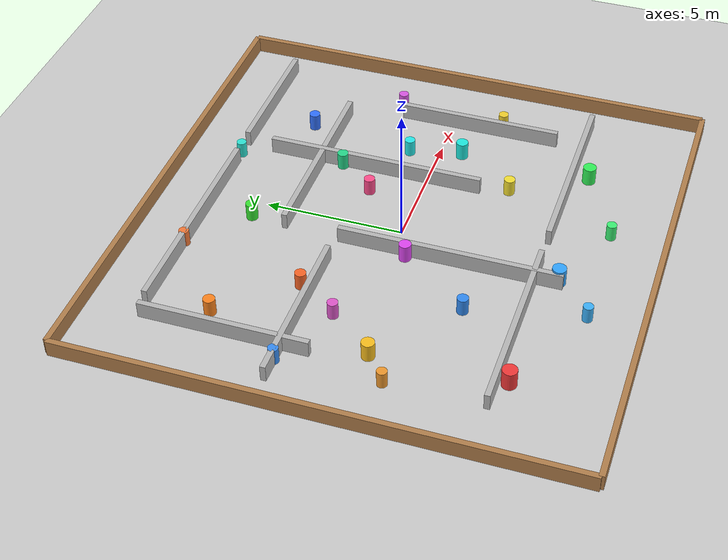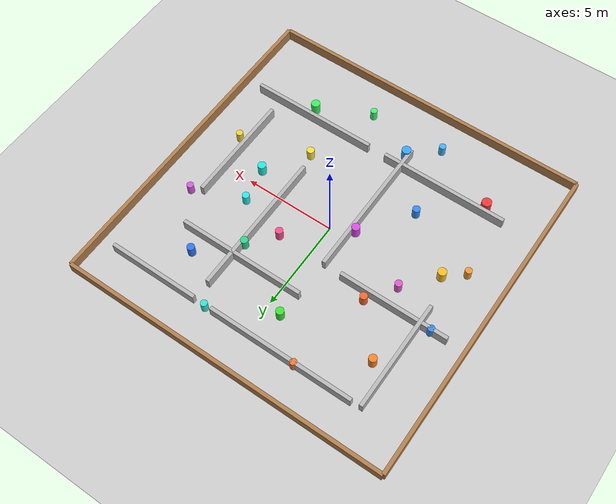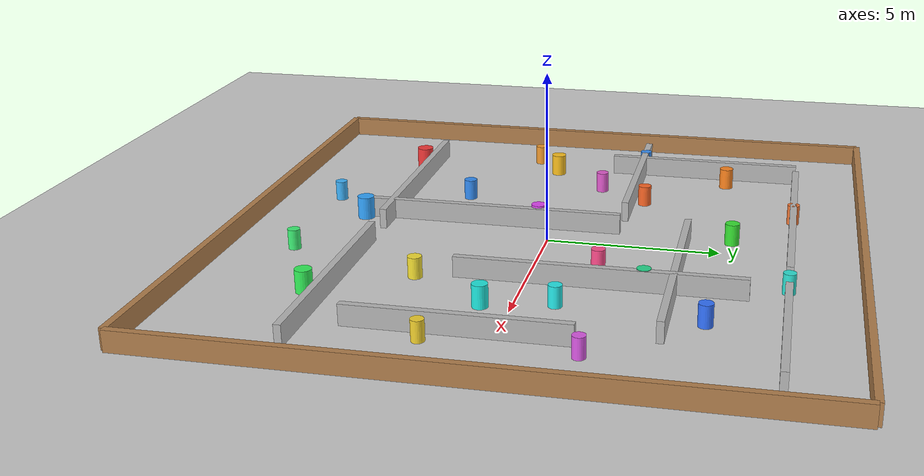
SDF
<sdf version="1.6">
 <world name="goal_seeker_large_dynamic">
  <include><uri>model://ground_plane</uri></include>
  <include><uri>model://sun</uri></include>
  <scene><shadows>false</shadows><ambient>0.45 0.45 0.45 1.0</ambient></scene>
  <physics type="ode">
   <real_time_update_rate>1000.0</real_time_update_rate>
   <max_step_size>0.001</max_step_size>
   <real_time_factor>1.0</real_time_factor>
   <ode><solver><type>quick</type><iters>200</iters><sor>1.4</sor></solver></ode>
  </physics>
  <model name="wall_north">
   <static>true</static>
   <pose>0 9 0 0 0 0</pose>
   <link name="link">
    <collision name="collision">
     <geometry><box><size>18 0.2 0.6</size></box></geometry>
     <pose>0 0 0.3 0 0 0</pose>
    </collision>
    <visual name="visual">
     <geometry><box><size>18 0.2 0.6</size></box></geometry>
     <pose>0 0 0.3 0 0 0</pose>
     <material>
      <script><uri>file://media/materials/scripts/gazebo.material</uri><name>Gazebo/Wood</name></script>
     </material>
    </visual>
   </link>
  </model>
  <model name="wall_south">
   <static>true</static>
   <pose>0 -9 0 0 0 0</pose>
   <link name="link">
    <collision name="collision">
     <geometry><box><size>18 0.2 0.6</size></box></geometry>
     <pose>0 0 0.3 0 0 0</pose>
    </collision>
    <visual name="visual">
     <geometry><box><size>18 0.2 0.6</size></box></geometry>
     <pose>0 0 0.3 0 0 0</pose>
     <material>
      <script><uri>file://media/materials/scripts/gazebo.material</uri><name>Gazebo/Wood</name></script>
     </material>
    </visual>
   </link>
  </model>
  <model name="wall_east">
   <static>true</static>
   <pose>9 0 0 0 0 1.5707963</pose>
   <link name="link">
    <collision name="collision">
     <geometry><box><size>18 0.2 0.6</size></box></geometry>
     <pose>0 0 0.3 0 0 0</pose>
    </collision>
    <visual name="visual">
     <geometry><box><size>18 0.2 0.6</size></box></geometry>
     <pose>0 0 0.3 0 0 0</pose>
     <material>
      <script><uri>file://media/materials/scripts/gazebo.material</uri><name>Gazebo/Wood</name></script>
     </material>
    </visual>
   </link>
  </model>
  <model name="wall_west">
   <static>true</static>
   <pose>-9 0 0 0 0 1.5707963</pose>
   <link name="link">
    <collision name="collision">
     <geometry><box><size>18 0.2 0.6</size></box></geometry>
     <pose>0 0 0.3 0 0 0</pose>
    </collision>
    <visual name="visual">
     <geometry><box><size>18 0.2 0.6</size></box></geometry>
     <pose>0 0 0.3 0 0 0</pose>
     <material>
      <script><uri>file://media/materials/scripts/gazebo.material</uri><name>Gazebo/Wood</name></script>
     </material>
    </visual>
   </link>
  </model>
  <model name="wall_h1">
   <static>true</static>
   <pose>-3.5 -5 0 0 0 0</pose>
   <link name="link">
    <collision name="collision">
     <geometry><box><size>7 0.2 0.6</size></box></geometry>
     <pose>0 0 0.3 0 0 0</pose>
    </collision>
    <visual name="visual">
     <geometry><box><size>7 0.2 0.6</size></box></geometry>
     <pose>0 0 0.3 0 0 0</pose>
    </visual>
   </link>
  </model>
  <model name="wall_h2">
   <static>true</static>
   <pose>4.5 -5 0 0 0 0</pose>
   <link name="link">
    <collision name="collision">
     <geometry><box><size>7 0.2 0.6</size></box></geometry>
     <pose>0 0 0.3 0 0 0</pose>
    </collision>
    <visual name="visual">
     <geometry><box><size>7 0.2 0.6</size></box></geometry>
     <pose>0 0 0.3 0 0 0</pose>
    </visual>
   </link>
  </model>
  <model name="wall_v1">
   <static>true</static>
   <pose>-1 -2 0 0 0 1.5707963</pose>
   <link name="link">
    <collision name="collision">
     <geometry><box><size>8 0.2 0.6</size></box></geometry>
     <pose>0 0 0.3 0 0 0</pose>
    </collision>
    <visual name="visual">
     <geometry><box><size>8 0.2 0.6</size></box></geometry>
     <pose>0 0 0.3 0 0 0</pose>
    </visual>
   </link>
  </model>
  <model name="wall_v2">
   <static>true</static>
   <pose>3 2 0 0 0 1.5707963</pose>
   <link name="link">
    <collision name="collision">
     <geometry><box><size>8 0.2 0.6</size></box></geometry>
     <pose>0 0 0.3 0 0 0</pose>
    </collision>
    <visual name="visual">
     <geometry><box><size>8 0.2 0.6</size></box></geometry>
     <pose>0 0 0.3 0 0 0</pose>
    </visual>
   </link>
  </model>
  <model name="wall_h3">
   <static>true</static>
   <pose>-5 2 0 0 0 0</pose>
   <link name="link">
    <collision name="collision">
     <geometry><box><size>6 0.2 0.6</size></box></geometry>
     <pose>0 0 0.3 0 0 0</pose>
    </collision>
    <visual name="visual">
     <geometry><box><size>6 0.2 0.6</size></box></geometry>
     <pose>0 0 0.3 0 0 0</pose>
    </visual>
   </link>
  </model>
  <model name="wall_h4">
   <static>true</static>
   <pose>2.5 4 0 0 0 0</pose>
   <link name="link">
    <collision name="collision">
     <geometry><box><size>7 0.2 0.6</size></box></geometry>
     <pose>0 0 0.3 0 0 0</pose>
    </collision>
    <visual name="visual">
     <geometry><box><size>7 0.2 0.6</size></box></geometry>
     <pose>0 0 0.3 0 0 0</pose>
    </visual>
   </link>
  </model>
  <model name="wall_v3">
   <static>true</static>
   <pose>6.5 -1 0 0 0 1.5707963</pose>
   <link name="link">
    <collision name="collision">
     <geometry><box><size>6 0.2 0.6</size></box></geometry>
     <pose>0 0 0.3 0 0 0</pose>
    </collision>
    <visual name="visual">
     <geometry><box><size>6 0.2 0.6</size></box></geometry>
     <pose>0 0 0.3 0 0 0</pose>
    </visual>
   </link>
  </model>
  <model name="wall_v4">
   <static>true</static>
   <pose>-6.5 4 0 0 0 1.5707963</pose>
   <link name="link">
    <collision name="collision">
     <geometry><box><size>6 0.2 0.6</size></box></geometry>
     <pose>0 0 0.3 0 0 0</pose>
    </collision>
    <visual name="visual">
     <geometry><box><size>6 0.2 0.6</size></box></geometry>
     <pose>0 0 0.3 0 0 0</pose>
    </visual>
   </link>
  </model>
  <model name="wall_h5">
   <static>true</static>
   <pose>-2 7 0 0 0 0</pose>
   <link name="link">
    <collision name="collision">
     <geometry><box><size>8 0.2 0.6</size></box></geometry>
     <pose>0 0 0.3 0 0 0</pose>
    </collision>
    <visual name="visual">
     <geometry><box><size>8 0.2 0.6</size></box></geometry>
     <pose>0 0 0.3 0 0 0</pose>
    </visual>
   </link>
  </model>
  <model name="wall_h6">
   <static>true</static>
   <pose>5.5 7 0 0 0 0</pose>
   <link name="link">
    <collision name="collision">
     <geometry><box><size>5 0.2 0.6</size></box></geometry>
     <pose>0 0 0.3 0 0 0</pose>
    </collision>
    <visual name="visual">
     <geometry><box><size>5 0.2 0.6</size></box></geometry>
     <pose>0 0 0.3 0 0 0</pose>
    </visual>
   </link>
  </model>
  <model name="moving_cylinder_1">
   <pose>-5.8 -5.4 0 0 0 0</pose>
   <plugin name="moving_cylinder_plugin_1" filename="libobstacle1.so"/>
   <link name="link">
    <kinematic>true</kinematic>
    <collision name="collision">
     <pose>0 0 0.34 0 0 0</pose>
     <geometry><cylinder><radius>0.26</radius><length>0.68</length></cylinder></geometry>
    </collision>
    <visual name="visual">
     <pose>0 0 0.34 0 0 0</pose>
     <geometry><cylinder><radius>0.26</radius><length>0.68</length></cylinder></geometry>
     <material><ambient>0.95 0.22 0.22 1.0</ambient><diffuse>0.95 0.22 0.22 1.0</diffuse></material>
    </visual>
   </link>
  </model>
  <model name="moving_cylinder_2">
   <pose>-0.8 -5.8 0 0 0 0</pose>
   <plugin name="moving_cylinder_plugin_2" filename="libobstacle2.so"/>
   <link name="link">
    <kinematic>true</kinematic>
    <collision name="collision">
     <pose>0 0 0.34 0 0 0</pose>
     <geometry><cylinder><radius>0.25</radius><length>0.68</length></cylinder></geometry>
    </collision>
    <visual name="visual">
     <pose>0 0 0.34 0 0 0</pose>
     <geometry><cylinder><radius>0.25</radius><length>0.68</length></cylinder></geometry>
     <material><ambient>0.20 0.65 1.00 1.0</ambient><diffuse>0.20 0.65 1.00 1.0</diffuse></material>
    </visual>
   </link>
  </model>
  <model name="moving_cylinder_3">
   <pose>4.8 -5.6 0 0 0 0</pose>
   <plugin name="moving_cylinder_plugin_3" filename="libobstacle3.so"/>
   <link name="link">
    <kinematic>true</kinematic>
    <collision name="collision">
     <pose>0 0 0.33 0 0 0</pose>
     <geometry><cylinder><radius>0.24</radius><length>0.66</length></cylinder></geometry>
    </collision>
    <visual name="visual">
     <pose>0 0 0.33 0 0 0</pose>
     <geometry><cylinder><radius>0.24</radius><length>0.66</length></cylinder></geometry>
     <material><ambient>0.20 0.95 0.35 1.0</ambient><diffuse>0.20 0.95 0.35 1.0</diffuse></material>
    </visual>
   </link>
  </model>
  <model name="moving_cylinder_4">
   <pose>-6.0 -0.8 0 0 0 0</pose>
   <plugin name="moving_cylinder_plugin_4" filename="libobstacle4.so"/>
   <link name="link">
    <kinematic>true</kinematic>
    <collision name="collision">
     <pose>0 0 0.33 0 0 0</pose>
     <geometry><cylinder><radius>0.23</radius><length>0.66</length></cylinder></geometry>
    </collision>
    <visual name="visual">
     <pose>0 0 0.33 0 0 0</pose>
     <geometry><cylinder><radius>0.23</radius><length>0.66</length></cylinder></geometry>
     <material><ambient>0.98 0.75 0.12 1.0</ambient><diffuse>0.98 0.75 0.12 1.0</diffuse></material>
    </visual>
   </link>
  </model>
  <model name="moving_cylinder_5">
   <pose>-1.2 -0.5 0 0 0 0</pose>
   <plugin name="moving_cylinder_plugin_5" filename="libobstacle5.so"/>
   <link name="link">
    <kinematic>true</kinematic>
    <collision name="collision">
     <pose>0 0 0.33 0 0 0</pose>
     <geometry><cylinder><radius>0.22</radius><length>0.66</length></cylinder></geometry>
    </collision>
    <visual name="visual">
     <pose>0 0 0.33 0 0 0</pose>
     <geometry><cylinder><radius>0.22</radius><length>0.66</length></cylinder></geometry>
     <material><ambient>0.88 0.28 0.95 1.0</ambient><diffuse>0.88 0.28 0.95 1.0</diffuse></material>
    </visual>
   </link>
  </model>
  <model name="moving_cylinder_6">
   <pose>4.8 -0.8 0 0 0 0</pose>
   <plugin name="moving_cylinder_plugin_6" filename="libobstacle6.so"/>
   <link name="link">
    <kinematic>true</kinematic>
    <collision name="collision">
     <pose>0 0 0.33 0 0 0</pose>
     <geometry><cylinder><radius>0.22</radius><length>0.66</length></cylinder></geometry>
    </collision>
    <visual name="visual">
     <pose>0 0 0.33 0 0 0</pose>
     <geometry><cylinder><radius>0.22</radius><length>0.66</length></cylinder></geometry>
     <material><ambient>0.12 0.92 0.88 1.0</ambient><diffuse>0.12 0.92 0.88 1.0</diffuse></material>
    </visual>
   </link>
  </model>
  <model name="moving_cylinder_7">
   <pose>-5.7 4.8 0 0 0 0</pose>
   <plugin name="moving_cylinder_plugin_7" filename="libobstacle9.so"/>
   <link name="link">
    <kinematic>true</kinematic>
    <collision name="collision">
     <pose>0 0 0.32 0 0 0</pose>
     <geometry><cylinder><radius>0.21</radius><length>0.64</length></cylinder></geometry>
    </collision>
    <visual name="visual">
     <pose>0 0 0.32 0 0 0</pose>
     <geometry><cylinder><radius>0.21</radius><length>0.64</length></cylinder></geometry>
     <material><ambient>0.99 0.52 0.12 1.0</ambient><diffuse>0.99 0.52 0.12 1.0</diffuse></material>
    </visual>
   </link>
  </model>
  <model name="moving_cylinder_8">
   <pose>-0.8 5.3 0 0 0 0</pose>
   <plugin name="moving_cylinder_plugin_8" filename="libobstacle10.so"/>
   <link name="link">
    <kinematic>true</kinematic>
    <collision name="collision">
     <pose>0 0 0.32 0 0 0</pose>
     <geometry><cylinder><radius>0.21</radius><length>0.64</length></cylinder></geometry>
    </collision>
    <visual name="visual">
     <pose>0 0 0.32 0 0 0</pose>
     <geometry><cylinder><radius>0.21</radius><length>0.64</length></cylinder></geometry>
     <material><ambient>0.22 0.90 0.20 1.0</ambient><diffuse>0.22 0.90 0.20 1.0</diffuse></material>
    </visual>
   </link>
  </model>
  <model name="moving_cylinder_9">
   <pose>4.8 5.0 0 0 0 0</pose>
   <plugin name="moving_cylinder_plugin_9" filename="libobstacle11.so"/>
   <link name="link">
    <kinematic>true</kinematic>
    <collision name="collision">
     <pose>0 0 0.32 0 0 0</pose>
     <geometry><cylinder><radius>0.20</radius><length>0.64</length></cylinder></geometry>
    </collision>
    <visual name="visual">
     <pose>0 0 0.32 0 0 0</pose>
     <geometry><cylinder><radius>0.20</radius><length>0.64</length></cylinder></geometry>
     <material><ambient>0.20 0.45 1.00 1.0</ambient><diffuse>0.20 0.45 1.00 1.0</diffuse></material>
    </visual>
   </link>
  </model>
  <model name="moving_cylinder_10">
   <pose>1.8 1.8 0 0 0 0</pose>
   <plugin name="moving_cylinder_plugin_10" filename="libobstacle12.so"/>
   <link name="link">
    <kinematic>true</kinematic>
    <collision name="collision">
     <pose>0 0 0.31 0 0 0</pose>
     <geometry><cylinder><radius>0.20</radius><length>0.62</length></cylinder></geometry>
    </collision>
    <visual name="visual">
     <pose>0 0 0.31 0 0 0</pose>
     <geometry><cylinder><radius>0.20</radius><length>0.62</length></cylinder></geometry>
     <material><ambient>1.00 0.30 0.55 1.0</ambient><diffuse>1.00 0.30 0.55 1.0</diffuse></material>
    </visual>
   </link>
  </model>
  <model name="moving_cylinder_11">
   <pose>-3.6 2.4 0 0 0 0</pose>
   <plugin name="moving_cylinder_plugin_11" filename="libobstacle7.so"/>
   <link name="link">
    <kinematic>true</kinematic>
    <collision name="collision">
     <pose>0 0 0.31 0 0 0</pose>
     <geometry><cylinder><radius>0.20</radius><length>0.62</length></cylinder></geometry>
    </collision>
    <visual name="visual">
     <pose>0 0 0.31 0 0 0</pose>
     <geometry><cylinder><radius>0.20</radius><length>0.62</length></cylinder></geometry>
     <material><ambient>0.98 0.40 0.15 1.0</ambient><diffuse>0.98 0.40 0.15 1.0</diffuse></material>
    </visual>
   </link>
  </model>
  <model name="moving_cylinder_12">
   <pose>2.9 3.2 0 0 0 0</pose>
   <plugin name="moving_cylinder_plugin_12" filename="libobstacle8.so"/>
   <link name="link">
    <kinematic>true</kinematic>
    <collision name="collision">
     <pose>0 0 0.31 0 0 0</pose>
     <geometry><cylinder><radius>0.20</radius><length>0.62</length></cylinder></geometry>
    </collision>
    <visual name="visual">
     <pose>0 0 0.31 0 0 0</pose>
     <geometry><cylinder><radius>0.20</radius><length>0.62</length></cylinder></geometry>
     <material><ambient>0.15 0.85 0.55 1.0</ambient><diffuse>0.15 0.85 0.55 1.0</diffuse></material>
    </visual>
   </link>
  </model>
  <model name="moving_cylinder_13">
   <pose>-3.1 -3.1 0 0 0 0</pose>
   <plugin name="moving_cylinder_plugin_13" filename="libobstacle9.so"/>
   <link name="link">
    <kinematic>true</kinematic>
    <collision name="collision">
     <pose>0 0 0.31 0 0 0</pose>
     <geometry><cylinder><radius>0.20</radius><length>0.62</length></cylinder></geometry>
    </collision>
    <visual name="visual">
     <pose>0 0 0.31 0 0 0</pose>
     <geometry><cylinder><radius>0.20</radius><length>0.62</length></cylinder></geometry>
     <material><ambient>0.20 0.55 0.95 1.0</ambient><diffuse>0.20 0.55 0.95 1.0</diffuse></material>
    </visual>
   </link>
  </model>
  <model name="moving_cylinder_14">
   <pose>3.3 -3.0 0 0 0 0</pose>
   <plugin name="moving_cylinder_plugin_14" filename="libobstacle10.so"/>
   <link name="link">
    <kinematic>true</kinematic>
    <collision name="collision">
     <pose>0 0 0.31 0 0 0</pose>
     <geometry><cylinder><radius>0.20</radius><length>0.62</length></cylinder></geometry>
    </collision>
    <visual name="visual">
     <pose>0 0 0.31 0 0 0</pose>
     <geometry><cylinder><radius>0.20</radius><length>0.62</length></cylinder></geometry>
     <material><ambient>0.96 0.88 0.20 1.0</ambient><diffuse>0.96 0.88 0.20 1.0</diffuse></material>
    </visual>
   </link>
  </model>
  <model name="moving_cylinder_15">
   <pose>-4.6 0.9 0 0 0 0</pose>
   <plugin name="moving_cylinder_plugin_15" filename="libobstacle11.so"/>
   <link name="link">
    <kinematic>true</kinematic>
    <collision name="collision">
     <pose>0 0 0.31 0 0 0</pose>
     <geometry><cylinder><radius>0.19</radius><length>0.62</length></cylinder></geometry>
    </collision>
    <visual name="visual">
     <pose>0 0 0.31 0 0 0</pose>
     <geometry><cylinder><radius>0.19</radius><length>0.62</length></cylinder></geometry>
     <material><ambient>0.88 0.35 0.80 1.0</ambient><diffuse>0.88 0.35 0.80 1.0</diffuse></material>
    </visual>
   </link>
  </model>
  <model name="moving_cylinder_16">
   <pose>4.4 1.1 0 0 0 0</pose>
   <plugin name="moving_cylinder_plugin_16" filename="libobstacle12.so"/>
   <link name="link">
    <kinematic>true</kinematic>
    <collision name="collision">
     <pose>0 0 0.31 0 0 0</pose>
     <geometry><cylinder><radius>0.19</radius><length>0.62</length></cylinder></geometry>
    </collision>
    <visual name="visual">
     <pose>0 0 0.31 0 0 0</pose>
     <geometry><cylinder><radius>0.19</radius><length>0.62</length></cylinder></geometry>
     <material><ambient>0.15 0.92 0.92 1.0</ambient><diffuse>0.15 0.92 0.92 1.0</diffuse></material>
    </visual>
   </link>
  </model>
  <model name="moving_cylinder_17">
   <pose>-7.0 -1.6 0 0 0 0</pose>
   <plugin name="moving_cylinder_plugin_17" filename="libobstacle1.so"/>
   <link name="link">
    <kinematic>true</kinematic>
    <collision name="collision">
     <pose>0 0 0.30 0 0 0</pose>
     <geometry><cylinder><radius>0.18</radius><length>0.60</length></cylinder></geometry>
    </collision>
    <visual name="visual">
     <pose>0 0 0.30 0 0 0</pose>
     <geometry><cylinder><radius>0.18</radius><length>0.60</length></cylinder></geometry>
     <material><ambient>0.94 0.60 0.18 1.0</ambient><diffuse>0.94 0.60 0.18 1.0</diffuse></material>
    </visual>
   </link>
  </model>
  <model name="moving_cylinder_18">
   <pose>-2.2 -7.1 0 0 0 0</pose>
   <plugin name="moving_cylinder_plugin_18" filename="libobstacle2.so"/>
   <link name="link">
    <kinematic>true</kinematic>
    <collision name="collision">
     <pose>0 0 0.30 0 0 0</pose>
     <geometry><cylinder><radius>0.18</radius><length>0.60</length></cylinder></geometry>
    </collision>
    <visual name="visual">
     <pose>0 0 0.30 0 0 0</pose>
     <geometry><cylinder><radius>0.18</radius><length>0.60</length></cylinder></geometry>
     <material><ambient>0.24 0.70 0.98 1.0</ambient><diffuse>0.24 0.70 0.98 1.0</diffuse></material>
    </visual>
   </link>
  </model>
  <model name="moving_cylinder_19">
   <pose>2.0 -7.0 0 0 0 0</pose>
   <plugin name="moving_cylinder_plugin_19" filename="libobstacle3.so"/>
   <link name="link">
    <kinematic>true</kinematic>
    <collision name="collision">
     <pose>0 0 0.30 0 0 0</pose>
     <geometry><cylinder><radius>0.18</radius><length>0.60</length></cylinder></geometry>
    </collision>
    <visual name="visual">
     <pose>0 0 0.30 0 0 0</pose>
     <geometry><cylinder><radius>0.18</radius><length>0.60</length></cylinder></geometry>
     <material><ambient>0.24 0.95 0.46 1.0</ambient><diffuse>0.24 0.95 0.46 1.0</diffuse></material>
    </visual>
   </link>
  </model>
  <model name="moving_cylinder_20">
   <pose>7.0 -1.8 0 0 0 0</pose>
   <plugin name="moving_cylinder_plugin_20" filename="libobstacle4.so"/>
   <link name="link">
    <kinematic>true</kinematic>
    <collision name="collision">
     <pose>0 0 0.30 0 0 0</pose>
     <geometry><cylinder><radius>0.18</radius><length>0.60</length></cylinder></geometry>
    </collision>
    <visual name="visual">
     <pose>0 0 0.30 0 0 0</pose>
     <geometry><cylinder><radius>0.18</radius><length>0.60</length></cylinder></geometry>
     <material><ambient>0.95 0.82 0.18 1.0</ambient><diffuse>0.95 0.82 0.18 1.0</diffuse></material>
    </visual>
   </link>
  </model>
  <model name="moving_cylinder_21">
   <pose>7.1 2.2 0 0 0 0</pose>
   <plugin name="moving_cylinder_plugin_21" filename="libobstacle5.so"/>
   <link name="link">
    <kinematic>true</kinematic>
    <collision name="collision">
     <pose>0 0 0.30 0 0 0</pose>
     <geometry><cylinder><radius>0.18</radius><length>0.60</length></cylinder></geometry>
    </collision>
    <visual name="visual">
     <pose>0 0 0.30 0 0 0</pose>
     <geometry><cylinder><radius>0.18</radius><length>0.60</length></cylinder></geometry>
     <material><ambient>0.86 0.35 0.90 1.0</ambient><diffuse>0.86 0.35 0.90 1.0</diffuse></material>
    </visual>
   </link>
  </model>
  <model name="moving_cylinder_22">
   <pose>2.4 7.0 0 0 0 0</pose>
   <plugin name="moving_cylinder_plugin_22" filename="libobstacle6.so"/>
   <link name="link">
    <kinematic>true</kinematic>
    <collision name="collision">
     <pose>0 0 0.30 0 0 0</pose>
     <geometry><cylinder><radius>0.18</radius><length>0.60</length></cylinder></geometry>
    </collision>
    <visual name="visual">
     <pose>0 0 0.30 0 0 0</pose>
     <geometry><cylinder><radius>0.18</radius><length>0.60</length></cylinder></geometry>
     <material><ambient>0.18 0.90 0.84 1.0</ambient><diffuse>0.18 0.90 0.84 1.0</diffuse></material>
    </visual>
   </link>
  </model>
  <model name="moving_cylinder_23">
   <pose>-2.8 7.0 0 0 0 0</pose>
   <plugin name="moving_cylinder_plugin_23" filename="libobstacle7.so"/>
   <link name="link">
    <kinematic>true</kinematic>
    <collision name="collision">
     <pose>0 0 0.30 0 0 0</pose>
     <geometry><cylinder><radius>0.18</radius><length>0.60</length></cylinder></geometry>
    </collision>
    <visual name="visual">
     <pose>0 0 0.30 0 0 0</pose>
     <geometry><cylinder><radius>0.18</radius><length>0.60</length></cylinder></geometry>
     <material><ambient>0.96 0.48 0.22 1.0</ambient><diffuse>0.96 0.48 0.22 1.0</diffuse></material>
    </visual>
   </link>
  </model>
  <model name="moving_cylinder_24">
   <pose>-7.1 2.0 0 0 0 0</pose>
   <plugin name="moving_cylinder_plugin_24" filename="libobstacle8.so"/>
   <link name="link">
    <kinematic>true</kinematic>
    <collision name="collision">
     <pose>0 0 0.30 0 0 0</pose>
     <geometry><cylinder><radius>0.18</radius><length>0.60</length></cylinder></geometry>
    </collision>
    <visual name="visual">
     <pose>0 0 0.30 0 0 0</pose>
     <geometry><cylinder><radius>0.18</radius><length>0.60</length></cylinder></geometry>
     <material><ambient>0.22 0.56 0.96 1.0</ambient><diffuse>0.22 0.56 0.96 1.0</diffuse></material>
    </visual>
   </link>
  </model>
 </world>
</sdf>
